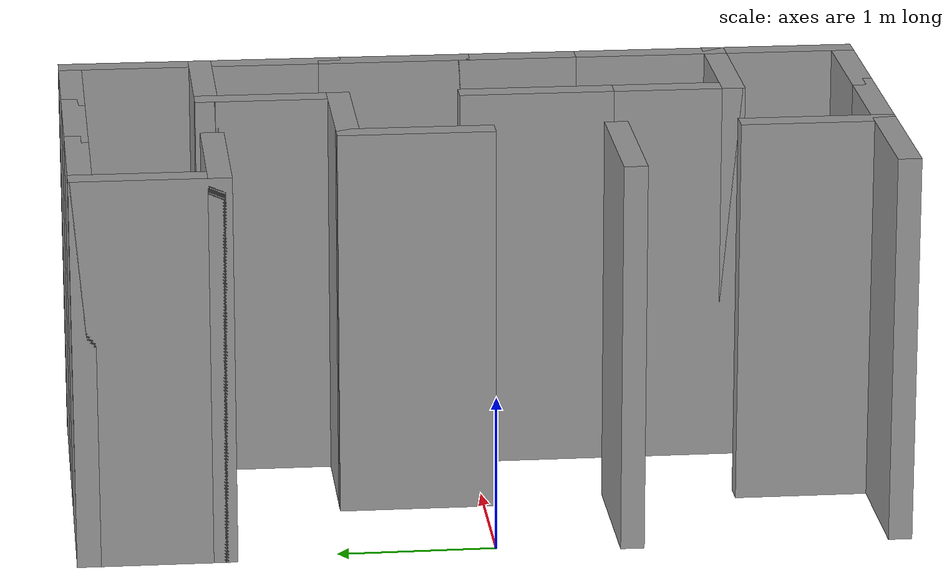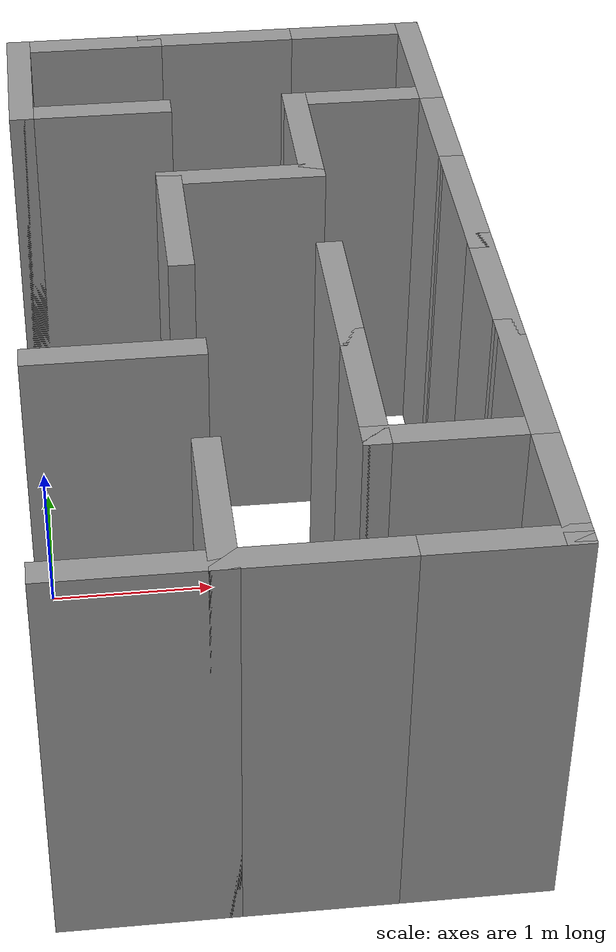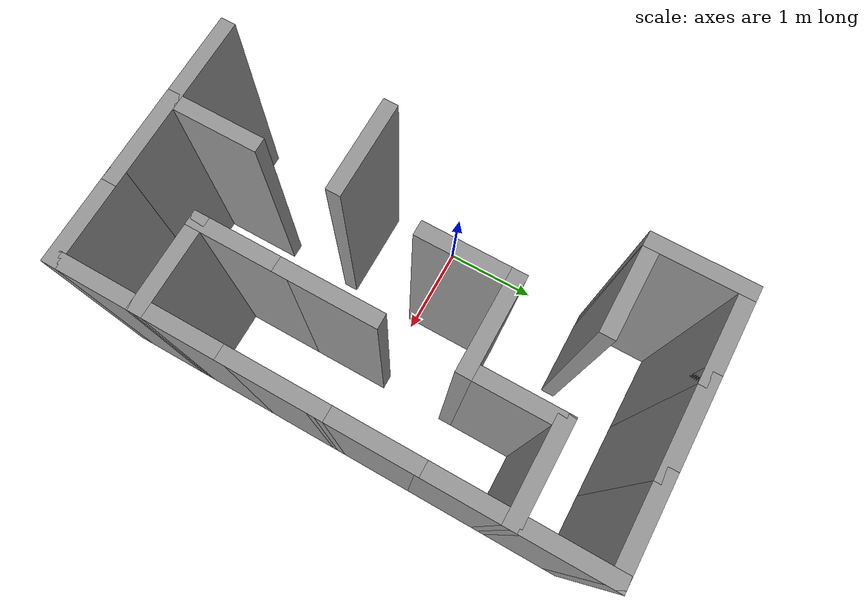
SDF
<sdf version="1.7">
 <model name="mazeMap">
  <link name="Wall_124">
   <pose>0.85 0.425 0 0 -0 1.5708</pose>
   <visual name="Wall_124_Visual">
    <pose>0 0 1.25 0 -0 0</pose>
    <geometry><box><size>1 0.15 2.5</size></box></geometry>
    <material>
     <script><uri>file://media/materials/scripts/gazebo.material</uri><name>Gazebo/Grey</name></script>
     <ambient>1 1 1 1</ambient>
     <shader type="pixel"/>
    </material>
    <meta><layer>0</layer></meta>
   </visual>
   <collision name="Wall_124_Collision">
    <pose>0 0 1.25 0 -0 0</pose>
    <geometry><box><size>1 0.15 2.5</size></box></geometry>
    <surface>
     <friction>
      <ode><mu>1</mu><mu2>1</mu2><fdir1>0 0 0</fdir1><slip1>0</slip1><slip2>0</slip2></ode>
      <torsional>
       <coefficient>1</coefficient>
       <patch_radius>0</patch_radius>
       <surface_radius>0</surface_radius>
       <use_patch_radius>1</use_patch_radius>
       <ode><slip>0</slip></ode>
      </torsional>
     </friction>
     <bounce><restitution_coefficient>0</restitution_coefficient><threshold>1e+06</threshold></bounce>
     <contact>
      <collide_without_contact>0</collide_without_contact>
      <collide_without_contact_bitmask>1</collide_without_contact_bitmask>
      <collide_bitmask>1</collide_bitmask>
      <ode>
       <soft_cfm>0</soft_cfm>
       <soft_erp>0.2</soft_erp>
       <kp>1e+13</kp>
       <kd>1</kd>
       <max_vel>0.01</max_vel>
       <min_depth>0</min_depth>
      </ode>
      <bullet>
       <split_impulse>1</split_impulse>
       <split_impulse_penetration_threshold>-0.01</split_impulse_penetration_threshold>
       <soft_cfm>0</soft_cfm>
       <soft_erp>0.2</soft_erp>
       <kp>1e+13</kp>
       <kd>1</kd>
      </bullet>
     </contact>
    </surface>
   </collision>
  </link>
  <link name="Wall_133">
   <pose>0.425 -2.55 0 0 -0 0</pose>
   <visual name="Wall_133_Visual">
    <pose>0 0 1.25 0 -0 0</pose>
    <geometry><box><size>1 0.15 2.5</size></box></geometry>
    <material>
     <script><uri>file://media/materials/scripts/gazebo.material</uri><name>Gazebo/Grey</name></script>
     <ambient>1 1 1 1</ambient>
     <shader type="pixel"/>
    </material>
    <meta><layer>0</layer></meta>
   </visual>
   <collision name="Wall_133_Collision">
    <pose>0 0 1.25 0 -0 0</pose>
    <geometry><box><size>1 0.15 2.5</size></box></geometry>
    <surface>
     <friction>
      <ode><mu>1</mu><mu2>1</mu2><fdir1>0 0 0</fdir1><slip1>0</slip1><slip2>0</slip2></ode>
      <torsional>
       <coefficient>1</coefficient>
       <patch_radius>0</patch_radius>
       <surface_radius>0</surface_radius>
       <use_patch_radius>1</use_patch_radius>
       <ode><slip>0</slip></ode>
      </torsional>
     </friction>
     <bounce><restitution_coefficient>0</restitution_coefficient><threshold>1e+06</threshold></bounce>
     <contact>
      <collide_without_contact>0</collide_without_contact>
      <collide_without_contact_bitmask>1</collide_without_contact_bitmask>
      <collide_bitmask>1</collide_bitmask>
      <ode>
       <soft_cfm>0</soft_cfm>
       <soft_erp>0.2</soft_erp>
       <kp>1e+13</kp>
       <kd>1</kd>
       <max_vel>0.01</max_vel>
       <min_depth>0</min_depth>
      </ode>
      <bullet>
       <split_impulse>1</split_impulse>
       <split_impulse_penetration_threshold>-0.01</split_impulse_penetration_threshold>
       <soft_cfm>0</soft_cfm>
       <soft_erp>0.2</soft_erp>
       <kp>1e+13</kp>
       <kd>1</kd>
      </bullet>
     </contact>
    </surface>
   </collision>
  </link>
  <link name="Wall_134">
   <pose>0.85 -2.125 0 0 -0 1.5708</pose>
   <visual name="Wall_134_Visual">
    <pose>0 0 1.25 0 -0 0</pose>
    <geometry><box><size>1 0.15 2.5</size></box></geometry>
    <material>
     <script><uri>file://media/materials/scripts/gazebo.material</uri><name>Gazebo/Grey</name></script>
     <ambient>1 1 1 1</ambient>
     <shader type="pixel"/>
    </material>
    <meta><layer>0</layer></meta>
   </visual>
   <collision name="Wall_134_Collision">
    <pose>0 0 1.25 0 -0 0</pose>
    <geometry><box><size>1 0.15 2.5</size></box></geometry>
    <surface>
     <friction>
      <ode><mu>1</mu><mu2>1</mu2><fdir1>0 0 0</fdir1><slip1>0</slip1><slip2>0</slip2></ode>
      <torsional>
       <coefficient>1</coefficient>
       <patch_radius>0</patch_radius>
       <surface_radius>0</surface_radius>
       <use_patch_radius>1</use_patch_radius>
       <ode><slip>0</slip></ode>
      </torsional>
     </friction>
     <bounce><restitution_coefficient>0</restitution_coefficient><threshold>1e+06</threshold></bounce>
     <contact>
      <collide_without_contact>0</collide_without_contact>
      <collide_without_contact_bitmask>1</collide_without_contact_bitmask>
      <collide_bitmask>1</collide_bitmask>
      <ode>
       <soft_cfm>0</soft_cfm>
       <soft_erp>0.2</soft_erp>
       <kp>1e+13</kp>
       <kd>1</kd>
       <max_vel>0.01</max_vel>
       <min_depth>0</min_depth>
      </ode>
      <bullet>
       <split_impulse>1</split_impulse>
       <split_impulse_penetration_threshold>-0.01</split_impulse_penetration_threshold>
       <soft_cfm>0</soft_cfm>
       <soft_erp>0.2</soft_erp>
       <kp>1e+13</kp>
       <kd>1</kd>
      </bullet>
     </contact>
    </surface>
   </collision>
  </link>
  <link name="Wall_137">
   <pose>0.425 -0.85 0 0 -0 0</pose>
   <visual name="Wall_137_Visual">
    <pose>0 0 1.25 0 -0 0</pose>
    <geometry><box><size>1 0.15 2.5</size></box></geometry>
    <material>
     <script><uri>file://media/materials/scripts/gazebo.material</uri><name>Gazebo/Grey</name></script>
     <ambient>1 1 1 1</ambient>
     <shader type="pixel"/>
    </material>
    <meta><layer>0</layer></meta>
   </visual>
   <collision name="Wall_137_Collision">
    <pose>0 0 1.25 0 -0 0</pose>
    <geometry><box><size>1 0.15 2.5</size></box></geometry>
    <surface>
     <friction>
      <ode><mu>1</mu><mu2>1</mu2><fdir1>0 0 0</fdir1><slip1>0</slip1><slip2>0</slip2></ode>
      <torsional>
       <coefficient>1</coefficient>
       <patch_radius>0</patch_radius>
       <surface_radius>0</surface_radius>
       <use_patch_radius>1</use_patch_radius>
       <ode><slip>0</slip></ode>
      </torsional>
     </friction>
     <bounce><restitution_coefficient>0</restitution_coefficient><threshold>1e+06</threshold></bounce>
     <contact>
      <collide_without_contact>0</collide_without_contact>
      <collide_without_contact_bitmask>1</collide_without_contact_bitmask>
      <collide_bitmask>1</collide_bitmask>
      <ode>
       <soft_cfm>0</soft_cfm>
       <soft_erp>0.2</soft_erp>
       <kp>1e+13</kp>
       <kd>1</kd>
       <max_vel>0.01</max_vel>
       <min_depth>0</min_depth>
      </ode>
      <bullet>
       <split_impulse>1</split_impulse>
       <split_impulse_penetration_threshold>-0.01</split_impulse_penetration_threshold>
       <soft_cfm>0</soft_cfm>
       <soft_erp>0.2</soft_erp>
       <kp>1e+13</kp>
       <kd>1</kd>
      </bullet>
     </contact>
    </surface>
   </collision>
  </link>
  <link name="Wall_141">
   <pose>1.275 -2.55 0 0 -0 3.14159</pose>
   <visual name="Wall_141_Visual">
    <pose>0 0 1.25 0 -0 0</pose>
    <geometry><box><size>1 0.15 2.5</size></box></geometry>
    <material>
     <script><uri>file://media/materials/scripts/gazebo.material</uri><name>Gazebo/Grey</name></script>
     <ambient>1 1 1 1</ambient>
     <shader type="pixel"/>
    </material>
    <meta><layer>0</layer></meta>
   </visual>
   <collision name="Wall_141_Collision">
    <pose>0 0 1.25 0 -0 0</pose>
    <geometry><box><size>1 0.15 2.5</size></box></geometry>
    <surface>
     <friction>
      <ode><mu>1</mu><mu2>1</mu2><fdir1>0 0 0</fdir1><slip1>0</slip1><slip2>0</slip2></ode>
      <torsional>
       <coefficient>1</coefficient>
       <patch_radius>0</patch_radius>
       <surface_radius>0</surface_radius>
       <use_patch_radius>1</use_patch_radius>
       <ode><slip>0</slip></ode>
      </torsional>
     </friction>
     <bounce><restitution_coefficient>0</restitution_coefficient><threshold>1e+06</threshold></bounce>
     <contact>
      <collide_without_contact>0</collide_without_contact>
      <collide_without_contact_bitmask>1</collide_without_contact_bitmask>
      <collide_bitmask>1</collide_bitmask>
      <ode>
       <soft_cfm>0</soft_cfm>
       <soft_erp>0.2</soft_erp>
       <kp>1e+13</kp>
       <kd>1</kd>
       <max_vel>0.01</max_vel>
       <min_depth>0</min_depth>
      </ode>
      <bullet>
       <split_impulse>1</split_impulse>
       <split_impulse_penetration_threshold>-0.01</split_impulse_penetration_threshold>
       <soft_cfm>0</soft_cfm>
       <soft_erp>0.2</soft_erp>
       <kp>1e+13</kp>
       <kd>1</kd>
      </bullet>
     </contact>
    </surface>
   </collision>
  </link>
  <link name="Wall_145">
   <pose>1.7 -1.275 0 0 0 -1.5708</pose>
   <visual name="Wall_145_Visual">
    <pose>0 0 1.25 0 -0 0</pose>
    <geometry><box><size>1 0.15 2.5</size></box></geometry>
    <material>
     <script><uri>file://media/materials/scripts/gazebo.material</uri><name>Gazebo/Grey</name></script>
     <ambient>1 1 1 1</ambient>
     <shader type="pixel"/>
    </material>
    <meta><layer>0</layer></meta>
   </visual>
   <collision name="Wall_145_Collision">
    <pose>0 0 1.25 0 -0 0</pose>
    <geometry><box><size>1 0.15 2.5</size></box></geometry>
    <surface>
     <friction>
      <ode><mu>1</mu><mu2>1</mu2><fdir1>0 0 0</fdir1><slip1>0</slip1><slip2>0</slip2></ode>
      <torsional>
       <coefficient>1</coefficient>
       <patch_radius>0</patch_radius>
       <surface_radius>0</surface_radius>
       <use_patch_radius>1</use_patch_radius>
       <ode><slip>0</slip></ode>
      </torsional>
     </friction>
     <bounce><restitution_coefficient>0</restitution_coefficient><threshold>1e+06</threshold></bounce>
     <contact>
      <collide_without_contact>0</collide_without_contact>
      <collide_without_contact_bitmask>1</collide_without_contact_bitmask>
      <collide_bitmask>1</collide_bitmask>
      <ode>
       <soft_cfm>0</soft_cfm>
       <soft_erp>0.2</soft_erp>
       <kp>1e+13</kp>
       <kd>1</kd>
       <max_vel>0.01</max_vel>
       <min_depth>0</min_depth>
      </ode>
      <bullet>
       <split_impulse>1</split_impulse>
       <split_impulse_penetration_threshold>-0.01</split_impulse_penetration_threshold>
       <soft_cfm>0</soft_cfm>
       <soft_erp>0.2</soft_erp>
       <kp>1e+13</kp>
       <kd>1</kd>
      </bullet>
     </contact>
    </surface>
   </collision>
  </link>
  <link name="Wall_146">
   <pose>2.125 -1.7 0 0 -0 0</pose>
   <visual name="Wall_146_Visual">
    <pose>0 0 1.25 0 -0 0</pose>
    <geometry><box><size>1 0.15 2.5</size></box></geometry>
    <material>
     <script><uri>file://media/materials/scripts/gazebo.material</uri><name>Gazebo/Grey</name></script>
     <ambient>1 1 1 1</ambient>
     <shader type="pixel"/>
    </material>
    <meta><layer>0</layer></meta>
   </visual>
   <collision name="Wall_146_Collision">
    <pose>0 0 1.25 0 -0 0</pose>
    <geometry><box><size>1 0.15 2.5</size></box></geometry>
    <surface>
     <friction>
      <ode><mu>1</mu><mu2>1</mu2><fdir1>0 0 0</fdir1><slip1>0</slip1><slip2>0</slip2></ode>
      <torsional>
       <coefficient>1</coefficient>
       <patch_radius>0</patch_radius>
       <surface_radius>0</surface_radius>
       <use_patch_radius>1</use_patch_radius>
       <ode><slip>0</slip></ode>
      </torsional>
     </friction>
     <bounce><restitution_coefficient>0</restitution_coefficient><threshold>1e+06</threshold></bounce>
     <contact>
      <collide_without_contact>0</collide_without_contact>
      <collide_without_contact_bitmask>1</collide_without_contact_bitmask>
      <collide_bitmask>1</collide_bitmask>
      <ode>
       <soft_cfm>0</soft_cfm>
       <soft_erp>0.2</soft_erp>
       <kp>1e+13</kp>
       <kd>1</kd>
       <max_vel>0.01</max_vel>
       <min_depth>0</min_depth>
      </ode>
      <bullet>
       <split_impulse>1</split_impulse>
       <split_impulse_penetration_threshold>-0.01</split_impulse_penetration_threshold>
       <soft_cfm>0</soft_cfm>
       <soft_erp>0.2</soft_erp>
       <kp>1e+13</kp>
       <kd>1</kd>
      </bullet>
     </contact>
    </surface>
   </collision>
  </link>
  <link name="Wall_147">
   <pose>2.55 -2.125 0 0 0 -1.5708</pose>
   <visual name="Wall_147_Visual">
    <pose>0 0 1.25 0 -0 0</pose>
    <geometry><box><size>1 0.15 2.5</size></box></geometry>
    <material>
     <script><uri>file://media/materials/scripts/gazebo.material</uri><name>Gazebo/Grey</name></script>
     <ambient>1 1 1 1</ambient>
     <shader type="pixel"/>
    </material>
    <meta><layer>0</layer></meta>
   </visual>
   <collision name="Wall_147_Collision">
    <pose>0 0 1.25 0 -0 0</pose>
    <geometry><box><size>1 0.15 2.5</size></box></geometry>
    <surface>
     <friction>
      <ode><mu>1</mu><mu2>1</mu2><fdir1>0 0 0</fdir1><slip1>0</slip1><slip2>0</slip2></ode>
      <torsional>
       <coefficient>1</coefficient>
       <patch_radius>0</patch_radius>
       <surface_radius>0</surface_radius>
       <use_patch_radius>1</use_patch_radius>
       <ode><slip>0</slip></ode>
      </torsional>
     </friction>
     <bounce><restitution_coefficient>0</restitution_coefficient><threshold>1e+06</threshold></bounce>
     <contact>
      <collide_without_contact>0</collide_without_contact>
      <collide_without_contact_bitmask>1</collide_without_contact_bitmask>
      <collide_bitmask>1</collide_bitmask>
      <ode>
       <soft_cfm>0</soft_cfm>
       <soft_erp>0.2</soft_erp>
       <kp>1e+13</kp>
       <kd>1</kd>
       <max_vel>0.01</max_vel>
       <min_depth>0</min_depth>
      </ode>
      <bullet>
       <split_impulse>1</split_impulse>
       <split_impulse_penetration_threshold>-0.01</split_impulse_penetration_threshold>
       <soft_cfm>0</soft_cfm>
       <soft_erp>0.2</soft_erp>
       <kp>1e+13</kp>
       <kd>1</kd>
      </bullet>
     </contact>
    </surface>
   </collision>
  </link>
  <link name="Wall_148">
   <pose>2.125 -2.55 0 0 -0 3.14159</pose>
   <visual name="Wall_148_Visual">
    <pose>0 0 1.25 0 -0 0</pose>
    <geometry><box><size>1 0.15 2.5</size></box></geometry>
    <material>
     <script><uri>file://media/materials/scripts/gazebo.material</uri><name>Gazebo/Grey</name></script>
     <ambient>1 1 1 1</ambient>
     <shader type="pixel"/>
    </material>
    <meta><layer>0</layer></meta>
   </visual>
   <collision name="Wall_148_Collision">
    <pose>0 0 1.25 0 -0 0</pose>
    <geometry><box><size>1 0.15 2.5</size></box></geometry>
    <surface>
     <friction>
      <ode><mu>1</mu><mu2>1</mu2><fdir1>0 0 0</fdir1><slip1>0</slip1><slip2>0</slip2></ode>
      <torsional>
       <coefficient>1</coefficient>
       <patch_radius>0</patch_radius>
       <surface_radius>0</surface_radius>
       <use_patch_radius>1</use_patch_radius>
       <ode><slip>0</slip></ode>
      </torsional>
     </friction>
     <bounce><restitution_coefficient>0</restitution_coefficient><threshold>1e+06</threshold></bounce>
     <contact>
      <collide_without_contact>0</collide_without_contact>
      <collide_without_contact_bitmask>1</collide_without_contact_bitmask>
      <collide_bitmask>1</collide_bitmask>
      <ode>
       <soft_cfm>0</soft_cfm>
       <soft_erp>0.2</soft_erp>
       <kp>1e+13</kp>
       <kd>1</kd>
       <max_vel>0.01</max_vel>
       <min_depth>0</min_depth>
      </ode>
      <bullet>
       <split_impulse>1</split_impulse>
       <split_impulse_penetration_threshold>-0.01</split_impulse_penetration_threshold>
       <soft_cfm>0</soft_cfm>
       <soft_erp>0.2</soft_erp>
       <kp>1e+13</kp>
       <kd>1</kd>
      </bullet>
     </contact>
    </surface>
   </collision>
  </link>
  <link name="Wall_150">
   <pose>1.275 0.85 0 0 -0 0</pose>
   <visual name="Wall_150_Visual">
    <pose>0 0 1.25 0 -0 0</pose>
    <geometry><box><size>1 0.15 2.5</size></box></geometry>
    <material>
     <script><uri>file://media/materials/scripts/gazebo.material</uri><name>Gazebo/Grey</name></script>
     <ambient>1 1 1 1</ambient>
     <shader type="pixel"/>
    </material>
    <meta><layer>0</layer></meta>
   </visual>
   <collision name="Wall_150_Collision">
    <pose>0 0 1.25 0 -0 0</pose>
    <geometry><box><size>1 0.15 2.5</size></box></geometry>
    <surface>
     <friction>
      <ode><mu>1</mu><mu2>1</mu2><fdir1>0 0 0</fdir1><slip1>0</slip1><slip2>0</slip2></ode>
      <torsional>
       <coefficient>1</coefficient>
       <patch_radius>0</patch_radius>
       <surface_radius>0</surface_radius>
       <use_patch_radius>1</use_patch_radius>
       <ode><slip>0</slip></ode>
      </torsional>
     </friction>
     <bounce><restitution_coefficient>0</restitution_coefficient><threshold>1e+06</threshold></bounce>
     <contact>
      <collide_without_contact>0</collide_without_contact>
      <collide_without_contact_bitmask>1</collide_without_contact_bitmask>
      <collide_bitmask>1</collide_bitmask>
      <ode>
       <soft_cfm>0</soft_cfm>
       <soft_erp>0.2</soft_erp>
       <kp>1e+13</kp>
       <kd>1</kd>
       <max_vel>0.01</max_vel>
       <min_depth>0</min_depth>
      </ode>
      <bullet>
       <split_impulse>1</split_impulse>
       <split_impulse_penetration_threshold>-0.01</split_impulse_penetration_threshold>
       <soft_cfm>0</soft_cfm>
       <soft_erp>0.2</soft_erp>
       <kp>1e+13</kp>
       <kd>1</kd>
      </bullet>
     </contact>
    </surface>
   </collision>
  </link>
  <link name="Wall_154">
   <pose>1.7 -0.425 0 0 0 -1.5708</pose>
   <visual name="Wall_154_Visual">
    <pose>0 0 1.25 0 -0 0</pose>
    <geometry><box><size>1 0.15 2.5</size></box></geometry>
    <material>
     <script><uri>file://media/materials/scripts/gazebo.material</uri><name>Gazebo/Grey</name></script>
     <ambient>1 1 1 1</ambient>
     <shader type="pixel"/>
    </material>
    <meta><layer>0</layer></meta>
   </visual>
   <collision name="Wall_154_Collision">
    <pose>0 0 1.25 0 -0 0</pose>
    <geometry><box><size>1 0.15 2.5</size></box></geometry>
    <surface>
     <friction>
      <ode><mu>1</mu><mu2>1</mu2><fdir1>0 0 0</fdir1><slip1>0</slip1><slip2>0</slip2></ode>
      <torsional>
       <coefficient>1</coefficient>
       <patch_radius>0</patch_radius>
       <surface_radius>0</surface_radius>
       <use_patch_radius>1</use_patch_radius>
       <ode><slip>0</slip></ode>
      </torsional>
     </friction>
     <bounce><restitution_coefficient>0</restitution_coefficient><threshold>1e+06</threshold></bounce>
     <contact>
      <collide_without_contact>0</collide_without_contact>
      <collide_without_contact_bitmask>1</collide_without_contact_bitmask>
      <collide_bitmask>1</collide_bitmask>
      <ode>
       <soft_cfm>0</soft_cfm>
       <soft_erp>0.2</soft_erp>
       <kp>1e+13</kp>
       <kd>1</kd>
       <max_vel>0.01</max_vel>
       <min_depth>0</min_depth>
      </ode>
      <bullet>
       <split_impulse>1</split_impulse>
       <split_impulse_penetration_threshold>-0.01</split_impulse_penetration_threshold>
       <soft_cfm>0</soft_cfm>
       <soft_erp>0.2</soft_erp>
       <kp>1e+13</kp>
       <kd>1</kd>
      </bullet>
     </contact>
    </surface>
   </collision>
  </link>
  <link name="Wall_156">
   <pose>2.55 -1.275 0 0 -0 1.5708</pose>
   <visual name="Wall_156_Visual">
    <pose>0 0 1.25 0 -0 0</pose>
    <geometry><box><size>1 0.15 2.5</size></box></geometry>
    <material>
     <script><uri>file://media/materials/scripts/gazebo.material</uri><name>Gazebo/Grey</name></script>
     <ambient>1 1 1 1</ambient>
     <shader type="pixel"/>
    </material>
    <meta><layer>0</layer></meta>
   </visual>
   <collision name="Wall_156_Collision">
    <pose>0 0 1.25 0 -0 0</pose>
    <geometry><box><size>1 0.15 2.5</size></box></geometry>
    <surface>
     <friction>
      <ode><mu>1</mu><mu2>1</mu2><fdir1>0 0 0</fdir1><slip1>0</slip1><slip2>0</slip2></ode>
      <torsional>
       <coefficient>1</coefficient>
       <patch_radius>0</patch_radius>
       <surface_radius>0</surface_radius>
       <use_patch_radius>1</use_patch_radius>
       <ode><slip>0</slip></ode>
      </torsional>
     </friction>
     <bounce><restitution_coefficient>0</restitution_coefficient><threshold>1e+06</threshold></bounce>
     <contact>
      <collide_without_contact>0</collide_without_contact>
      <collide_without_contact_bitmask>1</collide_without_contact_bitmask>
      <collide_bitmask>1</collide_bitmask>
      <ode>
       <soft_cfm>0</soft_cfm>
       <soft_erp>0.2</soft_erp>
       <kp>1e+13</kp>
       <kd>1</kd>
       <max_vel>0.01</max_vel>
       <min_depth>0</min_depth>
      </ode>
      <bullet>
       <split_impulse>1</split_impulse>
       <split_impulse_penetration_threshold>-0.01</split_impulse_penetration_threshold>
       <soft_cfm>0</soft_cfm>
       <soft_erp>0.2</soft_erp>
       <kp>1e+13</kp>
       <kd>1</kd>
      </bullet>
     </contact>
    </surface>
   </collision>
  </link>
  <link name="Wall_160">
   <pose>2.55 -0.425 0 0 0 -1.5708</pose>
   <visual name="Wall_160_Visual">
    <pose>0 0 1.25 0 -0 0</pose>
    <geometry><box><size>1 0.15 2.5</size></box></geometry>
    <material>
     <script><uri>file://media/materials/scripts/gazebo.material</uri><name>Gazebo/Grey</name></script>
     <ambient>1 1 1 1</ambient>
     <shader type="pixel"/>
    </material>
    <meta><layer>0</layer></meta>
   </visual>
   <collision name="Wall_160_Collision">
    <pose>0 0 1.25 0 -0 0</pose>
    <geometry><box><size>1 0.15 2.5</size></box></geometry>
    <surface>
     <friction>
      <ode><mu>1</mu><mu2>1</mu2><fdir1>0 0 0</fdir1><slip1>0</slip1><slip2>0</slip2></ode>
      <torsional>
       <coefficient>1</coefficient>
       <patch_radius>0</patch_radius>
       <surface_radius>0</surface_radius>
       <use_patch_radius>1</use_patch_radius>
       <ode><slip>0</slip></ode>
      </torsional>
     </friction>
     <bounce><restitution_coefficient>0</restitution_coefficient><threshold>1e+06</threshold></bounce>
     <contact>
      <collide_without_contact>0</collide_without_contact>
      <collide_without_contact_bitmask>1</collide_without_contact_bitmask>
      <collide_bitmask>1</collide_bitmask>
      <ode>
       <soft_cfm>0</soft_cfm>
       <soft_erp>0.2</soft_erp>
       <kp>1e+13</kp>
       <kd>1</kd>
       <max_vel>0.01</max_vel>
       <min_depth>0</min_depth>
      </ode>
      <bullet>
       <split_impulse>1</split_impulse>
       <split_impulse_penetration_threshold>-0.01</split_impulse_penetration_threshold>
       <soft_cfm>0</soft_cfm>
       <soft_erp>0.2</soft_erp>
       <kp>1e+13</kp>
       <kd>1</kd>
      </bullet>
     </contact>
    </surface>
   </collision>
  </link>
  <link name="Wall_162">
   <pose>2.55 0.425 0 0 -0 1.5708</pose>
   <visual name="Wall_162_Visual">
    <pose>0 0 1.25 0 -0 0</pose>
    <geometry><box><size>1 0.15 2.5</size></box></geometry>
    <material>
     <script><uri>file://media/materials/scripts/gazebo.material</uri><name>Gazebo/Grey</name></script>
     <ambient>1 1 1 1</ambient>
     <shader type="pixel"/>
    </material>
    <meta><layer>0</layer></meta>
   </visual>
   <collision name="Wall_162_Collision">
    <pose>0 0 1.25 0 -0 0</pose>
    <geometry><box><size>1 0.15 2.5</size></box></geometry>
    <surface>
     <friction>
      <ode><mu>1</mu><mu2>1</mu2><fdir1>0 0 0</fdir1><slip1>0</slip1><slip2>0</slip2></ode>
      <torsional>
       <coefficient>1</coefficient>
       <patch_radius>0</patch_radius>
       <surface_radius>0</surface_radius>
       <use_patch_radius>1</use_patch_radius>
       <ode><slip>0</slip></ode>
      </torsional>
     </friction>
     <bounce><restitution_coefficient>0</restitution_coefficient><threshold>1e+06</threshold></bounce>
     <contact>
      <collide_without_contact>0</collide_without_contact>
      <collide_without_contact_bitmask>1</collide_without_contact_bitmask>
      <collide_bitmask>1</collide_bitmask>
      <ode>
       <soft_cfm>0</soft_cfm>
       <soft_erp>0.2</soft_erp>
       <kp>1e+13</kp>
       <kd>1</kd>
       <max_vel>0.01</max_vel>
       <min_depth>0</min_depth>
      </ode>
      <bullet>
       <split_impulse>1</split_impulse>
       <split_impulse_penetration_threshold>-0.01</split_impulse_penetration_threshold>
       <soft_cfm>0</soft_cfm>
       <soft_erp>0.2</soft_erp>
       <kp>1e+13</kp>
       <kd>1</kd>
      </bullet>
     </contact>
    </surface>
   </collision>
  </link>
  <link name="Wall_186">
   <pose>0 2.125 0 0 0 -1.5708</pose>
   <visual name="Wall_186_Visual">
    <pose>0 0 1.25 0 -0 0</pose>
    <geometry><box><size>1 0.15 2.5</size></box></geometry>
    <material>
     <script><uri>file://media/materials/scripts/gazebo.material</uri><name>Gazebo/Grey</name></script>
     <ambient>1 1 1 1</ambient>
     <shader type="pixel"/>
    </material>
    <meta><layer>0</layer></meta>
   </visual>
   <collision name="Wall_186_Collision">
    <pose>0 0 1.25 0 -0 0</pose>
    <geometry><box><size>1 0.15 2.5</size></box></geometry>
    <surface>
     <friction>
      <ode><mu>1</mu><mu2>1</mu2><fdir1>0 0 0</fdir1><slip1>0</slip1><slip2>0</slip2></ode>
      <torsional>
       <coefficient>1</coefficient>
       <patch_radius>0</patch_radius>
       <surface_radius>0</surface_radius>
       <use_patch_radius>1</use_patch_radius>
       <ode><slip>0</slip></ode>
      </torsional>
     </friction>
     <bounce><restitution_coefficient>0</restitution_coefficient><threshold>1e+06</threshold></bounce>
     <contact>
      <collide_without_contact>0</collide_without_contact>
      <collide_without_contact_bitmask>1</collide_without_contact_bitmask>
      <collide_bitmask>1</collide_bitmask>
      <ode>
       <soft_cfm>0</soft_cfm>
       <soft_erp>0.2</soft_erp>
       <kp>1e+13</kp>
       <kd>1</kd>
       <max_vel>0.01</max_vel>
       <min_depth>0</min_depth>
      </ode>
      <bullet>
       <split_impulse>1</split_impulse>
       <split_impulse_penetration_threshold>-0.01</split_impulse_penetration_threshold>
       <soft_cfm>0</soft_cfm>
       <soft_erp>0.2</soft_erp>
       <kp>1e+13</kp>
       <kd>1</kd>
      </bullet>
     </contact>
    </surface>
   </collision>
  </link>
  <link name="Wall_187">
   <pose>0.425 1.7 0 0 -0 0</pose>
   <visual name="Wall_187_Visual">
    <pose>0 0 1.25 0 -0 0</pose>
    <geometry><box><size>1 0.15 2.5</size></box></geometry>
    <material>
     <script><uri>file://media/materials/scripts/gazebo.material</uri><name>Gazebo/Grey</name></script>
     <ambient>1 1 1 1</ambient>
     <shader type="pixel"/>
    </material>
    <meta><layer>0</layer></meta>
   </visual>
   <collision name="Wall_187_Collision">
    <pose>0 0 1.25 0 -0 0</pose>
    <geometry><box><size>1 0.15 2.5</size></box></geometry>
    <surface>
     <friction>
      <ode><mu>1</mu><mu2>1</mu2><fdir1>0 0 0</fdir1><slip1>0</slip1><slip2>0</slip2></ode>
      <torsional>
       <coefficient>1</coefficient>
       <patch_radius>0</patch_radius>
       <surface_radius>0</surface_radius>
       <use_patch_radius>1</use_patch_radius>
       <ode><slip>0</slip></ode>
      </torsional>
     </friction>
     <bounce><restitution_coefficient>0</restitution_coefficient><threshold>1e+06</threshold></bounce>
     <contact>
      <collide_without_contact>0</collide_without_contact>
      <collide_without_contact_bitmask>1</collide_without_contact_bitmask>
      <collide_bitmask>1</collide_bitmask>
      <ode>
       <soft_cfm>0</soft_cfm>
       <soft_erp>0.2</soft_erp>
       <kp>1e+13</kp>
       <kd>1</kd>
       <max_vel>0.01</max_vel>
       <min_depth>0</min_depth>
      </ode>
      <bullet>
       <split_impulse>1</split_impulse>
       <split_impulse_penetration_threshold>-0.01</split_impulse_penetration_threshold>
       <soft_cfm>0</soft_cfm>
       <soft_erp>0.2</soft_erp>
       <kp>1e+13</kp>
       <kd>1</kd>
      </bullet>
     </contact>
    </surface>
   </collision>
  </link>
  <link name="Wall_189">
   <pose>1.275 2.55 0 0 -0 0</pose>
   <visual name="Wall_189_Visual">
    <pose>0 0 1.25 0 -0 0</pose>
    <geometry><box><size>1 0.15 2.5</size></box></geometry>
    <material>
     <script><uri>file://media/materials/scripts/gazebo.material</uri><name>Gazebo/Grey</name></script>
     <ambient>1 1 1 1</ambient>
     <shader type="pixel"/>
    </material>
    <meta><layer>0</layer></meta>
   </visual>
   <collision name="Wall_189_Collision">
    <pose>0 0 1.25 0 -0 0</pose>
    <geometry><box><size>1 0.15 2.5</size></box></geometry>
    <surface>
     <friction>
      <ode><mu>1</mu><mu2>1</mu2><fdir1>0 0 0</fdir1><slip1>0</slip1><slip2>0</slip2></ode>
      <torsional>
       <coefficient>1</coefficient>
       <patch_radius>0</patch_radius>
       <surface_radius>0</surface_radius>
       <use_patch_radius>1</use_patch_radius>
       <ode><slip>0</slip></ode>
      </torsional>
     </friction>
     <bounce><restitution_coefficient>0</restitution_coefficient><threshold>1e+06</threshold></bounce>
     <contact>
      <collide_without_contact>0</collide_without_contact>
      <collide_without_contact_bitmask>1</collide_without_contact_bitmask>
      <collide_bitmask>1</collide_bitmask>
      <ode>
       <soft_cfm>0</soft_cfm>
       <soft_erp>0.2</soft_erp>
       <kp>1e+13</kp>
       <kd>1</kd>
       <max_vel>0.01</max_vel>
       <min_depth>0</min_depth>
      </ode>
      <bullet>
       <split_impulse>1</split_impulse>
       <split_impulse_penetration_threshold>-0.01</split_impulse_penetration_threshold>
       <soft_cfm>0</soft_cfm>
       <soft_erp>0.2</soft_erp>
       <kp>1e+13</kp>
       <kd>1</kd>
      </bullet>
     </contact>
    </surface>
   </collision>
  </link>
  <link name="Wall_191">
   <pose>2.125 1.7 0 0 -0 0</pose>
   <visual name="Wall_191_Visual">
    <pose>0 0 1.25 0 -0 0</pose>
    <geometry><box><size>1 0.15 2.5</size></box></geometry>
    <material>
     <script><uri>file://media/materials/scripts/gazebo.material</uri><name>Gazebo/Grey</name></script>
     <ambient>1 1 1 1</ambient>
     <shader type="pixel"/>
    </material>
    <meta><layer>0</layer></meta>
   </visual>
   <collision name="Wall_191_Collision">
    <pose>0 0 1.25 0 -0 0</pose>
    <geometry><box><size>1 0.15 2.5</size></box></geometry>
    <surface>
     <friction>
      <ode><mu>1</mu><mu2>1</mu2><fdir1>0 0 0</fdir1><slip1>0</slip1><slip2>0</slip2></ode>
      <torsional>
       <coefficient>1</coefficient>
       <patch_radius>0</patch_radius>
       <surface_radius>0</surface_radius>
       <use_patch_radius>1</use_patch_radius>
       <ode><slip>0</slip></ode>
      </torsional>
     </friction>
     <bounce><restitution_coefficient>0</restitution_coefficient><threshold>1e+06</threshold></bounce>
     <contact>
      <collide_without_contact>0</collide_without_contact>
      <collide_without_contact_bitmask>1</collide_without_contact_bitmask>
      <collide_bitmask>1</collide_bitmask>
      <ode>
       <soft_cfm>0</soft_cfm>
       <soft_erp>0.2</soft_erp>
       <kp>1e+13</kp>
       <kd>1</kd>
       <max_vel>0.01</max_vel>
       <min_depth>0</min_depth>
      </ode>
      <bullet>
       <split_impulse>1</split_impulse>
       <split_impulse_penetration_threshold>-0.01</split_impulse_penetration_threshold>
       <soft_cfm>0</soft_cfm>
       <soft_erp>0.2</soft_erp>
       <kp>1e+13</kp>
       <kd>1</kd>
      </bullet>
     </contact>
    </surface>
   </collision>
  </link>
  <link name="Wall_192">
   <pose>2.55 2.125 0 0 -0 1.5708</pose>
   <visual name="Wall_192_Visual">
    <pose>0 0 1.25 0 -0 0</pose>
    <geometry><box><size>1 0.15 2.5</size></box></geometry>
    <material>
     <script><uri>file://media/materials/scripts/gazebo.material</uri><name>Gazebo/Grey</name></script>
     <ambient>1 1 1 1</ambient>
     <shader type="pixel"/>
    </material>
    <meta><layer>0</layer></meta>
   </visual>
   <collision name="Wall_192_Collision">
    <pose>0 0 1.25 0 -0 0</pose>
    <geometry><box><size>1 0.15 2.5</size></box></geometry>
    <surface>
     <friction>
      <ode><mu>1</mu><mu2>1</mu2><fdir1>0 0 0</fdir1><slip1>0</slip1><slip2>0</slip2></ode>
      <torsional>
       <coefficient>1</coefficient>
       <patch_radius>0</patch_radius>
       <surface_radius>0</surface_radius>
       <use_patch_radius>1</use_patch_radius>
       <ode><slip>0</slip></ode>
      </torsional>
     </friction>
     <bounce><restitution_coefficient>0</restitution_coefficient><threshold>1e+06</threshold></bounce>
     <contact>
      <collide_without_contact>0</collide_without_contact>
      <collide_without_contact_bitmask>1</collide_without_contact_bitmask>
      <collide_bitmask>1</collide_bitmask>
      <ode>
       <soft_cfm>0</soft_cfm>
       <soft_erp>0.2</soft_erp>
       <kp>1e+13</kp>
       <kd>1</kd>
       <max_vel>0.01</max_vel>
       <min_depth>0</min_depth>
      </ode>
      <bullet>
       <split_impulse>1</split_impulse>
       <split_impulse_penetration_threshold>-0.01</split_impulse_penetration_threshold>
       <soft_cfm>0</soft_cfm>
       <soft_erp>0.2</soft_erp>
       <kp>1e+13</kp>
       <kd>1</kd>
      </bullet>
     </contact>
    </surface>
   </collision>
  </link>
  <link name="Wall_193">
   <pose>2.125 2.55 0 0 -0 3.14159</pose>
   <visual name="Wall_193_Visual">
    <pose>0 0 1.25 0 -0 0</pose>
    <geometry><box><size>1 0.15 2.5</size></box></geometry>
    <material>
     <script><uri>file://media/materials/scripts/gazebo.material</uri><name>Gazebo/Grey</name></script>
     <ambient>1 1 1 1</ambient>
     <shader type="pixel"/>
    </material>
    <meta><layer>0</layer></meta>
   </visual>
   <collision name="Wall_193_Collision">
    <pose>0 0 1.25 0 -0 0</pose>
    <geometry><box><size>1 0.15 2.5</size></box></geometry>
    <surface>
     <friction>
      <ode><mu>1</mu><mu2>1</mu2><fdir1>0 0 0</fdir1><slip1>0</slip1><slip2>0</slip2></ode>
      <torsional>
       <coefficient>1</coefficient>
       <patch_radius>0</patch_radius>
       <surface_radius>0</surface_radius>
       <use_patch_radius>1</use_patch_radius>
       <ode><slip>0</slip></ode>
      </torsional>
     </friction>
     <bounce><restitution_coefficient>0</restitution_coefficient><threshold>1e+06</threshold></bounce>
     <contact>
      <collide_without_contact>0</collide_without_contact>
      <collide_without_contact_bitmask>1</collide_without_contact_bitmask>
      <collide_bitmask>1</collide_bitmask>
      <ode>
       <soft_cfm>0</soft_cfm>
       <soft_erp>0.2</soft_erp>
       <kp>1e+13</kp>
       <kd>1</kd>
       <max_vel>0.01</max_vel>
       <min_depth>0</min_depth>
      </ode>
      <bullet>
       <split_impulse>1</split_impulse>
       <split_impulse_penetration_threshold>-0.01</split_impulse_penetration_threshold>
       <soft_cfm>0</soft_cfm>
       <soft_erp>0.2</soft_erp>
       <kp>1e+13</kp>
       <kd>1</kd>
      </bullet>
     </contact>
    </surface>
   </collision>
  </link>
  <link name="Wall_195">
   <pose>2.55 1.275 0 0 0 -1.5708</pose>
   <visual name="Wall_195_Visual">
    <pose>0 0 1.25 0 -0 0</pose>
    <geometry><box><size>1 0.15 2.5</size></box></geometry>
    <material>
     <script><uri>file://media/materials/scripts/gazebo.material</uri><name>Gazebo/Grey</name></script>
     <ambient>1 1 1 1</ambient>
     <shader type="pixel"/>
    </material>
    <meta><layer>0</layer></meta>
   </visual>
   <collision name="Wall_195_Collision">
    <pose>0 0 1.25 0 -0 0</pose>
    <geometry><box><size>1 0.15 2.5</size></box></geometry>
    <surface>
     <friction>
      <ode><mu>1</mu><mu2>1</mu2><fdir1>0 0 0</fdir1><slip1>0</slip1><slip2>0</slip2></ode>
      <torsional>
       <coefficient>1</coefficient>
       <patch_radius>0</patch_radius>
       <surface_radius>0</surface_radius>
       <use_patch_radius>1</use_patch_radius>
       <ode><slip>0</slip></ode>
      </torsional>
     </friction>
     <bounce><restitution_coefficient>0</restitution_coefficient><threshold>1e+06</threshold></bounce>
     <contact>
      <collide_without_contact>0</collide_without_contact>
      <collide_without_contact_bitmask>1</collide_without_contact_bitmask>
      <collide_bitmask>1</collide_bitmask>
      <ode>
       <soft_cfm>0</soft_cfm>
       <soft_erp>0.2</soft_erp>
       <kp>1e+13</kp>
       <kd>1</kd>
       <max_vel>0.01</max_vel>
       <min_depth>0</min_depth>
      </ode>
      <bullet>
       <split_impulse>1</split_impulse>
       <split_impulse_penetration_threshold>-0.01</split_impulse_penetration_threshold>
       <soft_cfm>0</soft_cfm>
       <soft_erp>0.2</soft_erp>
       <kp>1e+13</kp>
       <kd>1</kd>
      </bullet>
     </contact>
    </surface>
   </collision>
  </link>
  <link name="Wall_197">
   <pose>1.7 1.275 0 0 0 -1.5708</pose>
   <visual name="Wall_197_Visual">
    <pose>0 0 1.25 0 -0 0</pose>
    <geometry><box><size>1 0.15 2.5</size></box></geometry>
    <material>
     <script><uri>file://media/materials/scripts/gazebo.material</uri><name>Gazebo/Grey</name></script>
     <ambient>1 1 1 1</ambient>
     <shader type="pixel"/>
    </material>
    <meta><layer>0</layer></meta>
   </visual>
   <collision name="Wall_197_Collision">
    <pose>0 0 1.25 0 -0 0</pose>
    <geometry><box><size>1 0.15 2.5</size></box></geometry>
    <surface>
     <friction>
      <ode><mu>1</mu><mu2>1</mu2><fdir1>0 0 0</fdir1><slip1>0</slip1><slip2>0</slip2></ode>
      <torsional>
       <coefficient>1</coefficient>
       <patch_radius>0</patch_radius>
       <surface_radius>0</surface_radius>
       <use_patch_radius>1</use_patch_radius>
       <ode><slip>0</slip></ode>
      </torsional>
     </friction>
     <bounce><restitution_coefficient>0</restitution_coefficient><threshold>1e+06</threshold></bounce>
     <contact>
      <collide_without_contact>0</collide_without_contact>
      <collide_without_contact_bitmask>1</collide_without_contact_bitmask>
      <collide_bitmask>1</collide_bitmask>
      <ode>
       <soft_cfm>0</soft_cfm>
       <soft_erp>0.2</soft_erp>
       <kp>1e+13</kp>
       <kd>1</kd>
       <max_vel>0.01</max_vel>
       <min_depth>0</min_depth>
      </ode>
      <bullet>
       <split_impulse>1</split_impulse>
       <split_impulse_penetration_threshold>-0.01</split_impulse_penetration_threshold>
       <soft_cfm>0</soft_cfm>
       <soft_erp>0.2</soft_erp>
       <kp>1e+13</kp>
       <kd>1</kd>
      </bullet>
     </contact>
    </surface>
   </collision>
  </link>
  <link name="Wall_199">
   <pose>0.425 2.55 0 0 -0 0</pose>
   <visual name="Wall_199_Visual">
    <pose>0 0 1.25 0 -0 0</pose>
    <geometry><box><size>1 0.15 2.5</size></box></geometry>
    <material>
     <script><uri>file://media/materials/scripts/gazebo.material</uri><name>Gazebo/Grey</name></script>
     <ambient>1 1 1 1</ambient>
     <shader type="pixel"/>
    </material>
    <meta><layer>0</layer></meta>
   </visual>
   <collision name="Wall_199_Collision">
    <pose>0 0 1.25 0 -0 0</pose>
    <geometry><box><size>1 0.15 2.5</size></box></geometry>
    <surface>
     <friction>
      <ode><mu>1</mu><mu2>1</mu2><fdir1>0 0 0</fdir1><slip1>0</slip1><slip2>0</slip2></ode>
      <torsional>
       <coefficient>1</coefficient>
       <patch_radius>0</patch_radius>
       <surface_radius>0</surface_radius>
       <use_patch_radius>1</use_patch_radius>
       <ode><slip>0</slip></ode>
      </torsional>
     </friction>
     <bounce><restitution_coefficient>0</restitution_coefficient><threshold>1e+06</threshold></bounce>
     <contact>
      <collide_without_contact>0</collide_without_contact>
      <collide_without_contact_bitmask>1</collide_without_contact_bitmask>
      <collide_bitmask>1</collide_bitmask>
      <ode>
       <soft_cfm>0</soft_cfm>
       <soft_erp>0.2</soft_erp>
       <kp>1e+13</kp>
       <kd>1</kd>
       <max_vel>0.01</max_vel>
       <min_depth>0</min_depth>
      </ode>
      <bullet>
       <split_impulse>1</split_impulse>
       <split_impulse_penetration_threshold>-0.01</split_impulse_penetration_threshold>
       <soft_cfm>0</soft_cfm>
       <soft_erp>0.2</soft_erp>
       <kp>1e+13</kp>
       <kd>1</kd>
      </bullet>
     </contact>
    </surface>
   </collision>
  </link>
  <static>1</static>
 </model>
</sdf>
